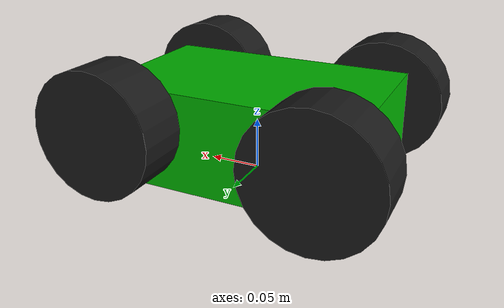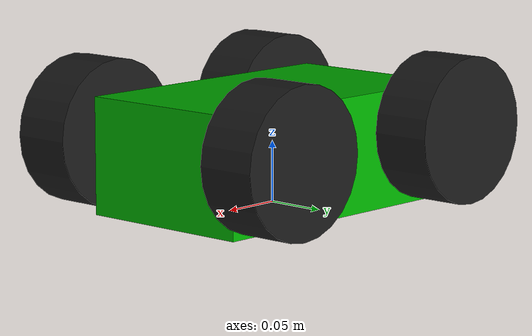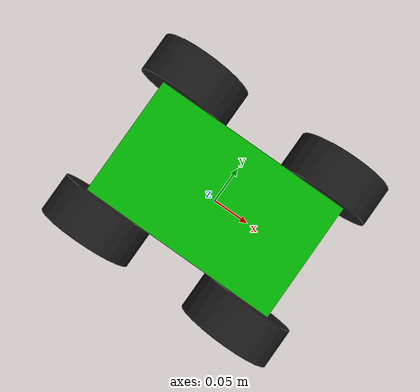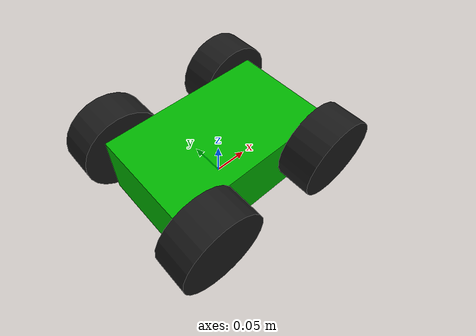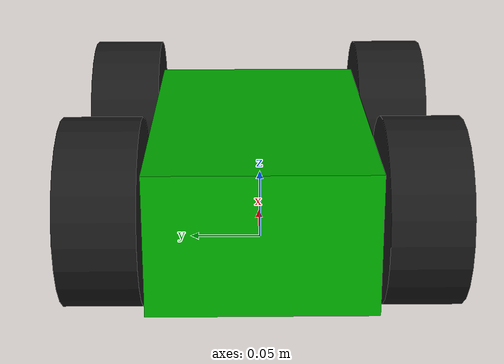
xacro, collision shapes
<?xml version="1.0" ?>
<robot name="omnidirectional" xmlns:xacro="http://ros.org/wiki/xacro">

    <xacro:property name="base_length" value="0.25" />
    <xacro:property name="base_width" value="0.15" />
    <xacro:property name="base_height" value="0.1" />
    <xacro:property name="wheel_radius" value="0.06" />
    <xacro:property name="wheel_length" value="0.05" />

    <link name="base_footprint"/>

    <joint name="base_joint" type="fixed">
        <parent link="base_footprint"/>
        <child link="base_link"/>
        <origin xyz="0 0 0.095" rpy="0 0 0"/>
    </joint>

    <link name="base_link">
        <visual>
            <origin xyz="0.0 0.0 0.0" rpy="0 0 0" />
            <geometry>
                <mesh filename="package://omnidirectional_description/meshes/X3/base_link.STL"/>
            </geometry>
            <material name="Green">
                <color rgba="0 0.7 0 1" />
            </material>
        </visual>
        <collision>
            <origin xyz="0.0 0.0 -0.05" rpy="0 0 0" />
            <geometry>
                <box size="0.25 0.15 0.095" />
            </geometry>
        </collision>
        <inertial>
            <origin xyz="0 0 0" rpy="0 0 0"/>
            <mass value="1"/>
            <inertia ixx="1.0" ixy="0.0" ixz="0.0"
                iyy="1.0" iyz="0.0" izz="1.0"/>
        </inertial>
    </link>

    <link name="wheel_left_front">
        <visual>
            <origin xyz="0.0 0.0 0.0" rpy="0 0 0" />
            <geometry>
                <mesh filename="package://omnidirectional_description/meshes/X3/front_left_wheel.STL"/>
            </geometry>
            <material name="Grey">
                <color rgba="0.1 0.1 0.1 1.0" />
            </material>
        </visual>
        <collision>
            <origin xyz="0.0 0.0 0.0" rpy="0 0 0" />
            <geometry>
                <cylinder length="0.05" radius="0.06"/>
            </geometry>
        </collision>
        <inertial>
            <origin xyz="0 0 0" rpy="0 0 0"/>
            <mass value="1"/>
            <inertia ixx="1.0" ixy="0.0" ixz="0.0"
                iyy="1.0" iyz="0.0" izz="1.0"/>
        </inertial>
    </link>

    <joint name="wheel_left_front_joint" type="continuous">
        <origin xyz="0.1 0.1 -0.035" rpy="1.5708 0  0" />
        <parent link="base_link" />
        <child link="wheel_left_front" />
        <axis xyz="0 0 1" />
    </joint>

    <link name="wheel_rigth_front">
        <visual>
            <origin xyz="0.0 0.0 0.0" rpy="0 0 0" />
            <geometry>
                <mesh filename="package://omnidirectional_description/meshes/X3/front_right_wheel.STL"/>
            </geometry>
            <material name="Grey">
                <color rgba="0.1 0.1 0.1 1.0" />
            </material>
        </visual>
        <collision>
            <origin xyz="0.0 0.0 0.0" rpy="0 0 0" />
            <geometry>
                <cylinder length="0.05" radius="0.06"/>
            </geometry>
        </collision>
        <inertial>
            <origin xyz="0 0 0" rpy="0 0 0"/>
            <mass value="1"/>
            <inertia ixx="1.0" ixy="0.0" ixz="0.0"
                iyy="1.0" iyz="0.0" izz="1.0"/>
        </inertial>
    </link>

    <joint name="wheel_rigth_front_joint" type="continuous">
        <origin xyz="0.1 -0.1 -0.035" rpy="1.5708 0  0" />
        <parent link="base_link" />
        <child link="wheel_rigth_front" />
        <axis xyz="0 0 1" />
    </joint>

    <link name="wheel_left_back">
        <visual>
            <origin xyz="0.0 0.0 0.0" rpy="0 0 0" />
            <geometry>
                <mesh filename="package://omnidirectional_description/meshes/X3/back_left_wheel.STL"/>
            </geometry>
            <material name="">
                <color rgba="0.1 0.1 0.1 1.0" />
            </material>
        </visual>
        <collision>
            <origin xyz="0.0 0.0 0.0" rpy="0 0 0" />
            <geometry>
                <cylinder length="0.05" radius="0.06"/>
            </geometry>
        </collision>
        <inertial>
            <origin xyz="0 0 0" rpy="0 0 0"/>
            <mass value="1"/>
            <inertia ixx="1.0" ixy="0.0" ixz="0.0"
                iyy="1.0" iyz="0.0" izz="1.0"/>
        </inertial>
    </link>

    <joint name="wheel_left_back_joint" type="continuous">
        <origin xyz="-0.1 0.1 -0.035" rpy="1.5708 0  0" />
        <parent link="base_link" />
        <child link="wheel_left_back" />
        <axis xyz="0 0 1" />
    </joint>

    <link name="wheel_rigth_back">
        <visual>
            <origin xyz="0.0 0.0 0.0" rpy="0 0 0" />
            <geometry>
                <mesh filename="package://omnidirectional_description/meshes/X3/back_right_wheel.STL"/>
            </geometry>
            <material name="Grey">
                <color rgba="0.1 0.1 0.1 1.0" />
            </material>
        </visual>
        <collision>
            <origin xyz="0.0 0.0 0.0" rpy="0 0 0" />
            <geometry>
                <cylinder length="0.05" radius="0.06"/>
            </geometry>
        </collision>
        <inertial>
            <origin xyz="0 0 0" rpy="0 0 0"/>
            <mass value="1"/>
            <inertia ixx="1.0" ixy="0.0" ixz="0.0"
                iyy="1.0" iyz="0.0" izz="1.0"/>
        </inertial>
    </link>

    <joint name="wheel_rigth_back_joint" type="continuous">
        <origin xyz="-0.1 -0.1 -0.035" rpy="1.5708 0  0" />
        <parent link="base_link" />
        <child link="wheel_rigth_back" />
        <axis xyz="0 0 1" />
    </joint>

</robot>
